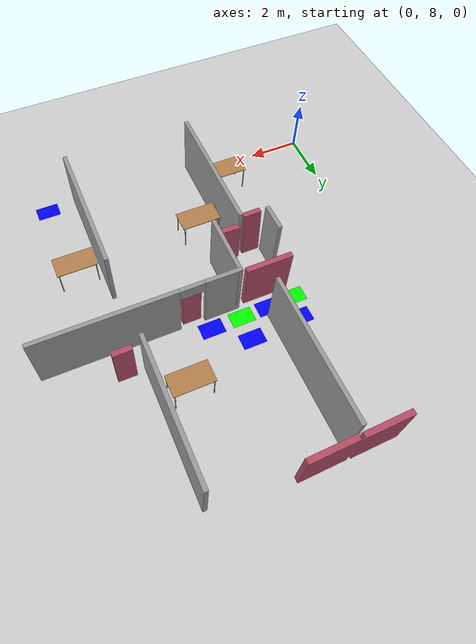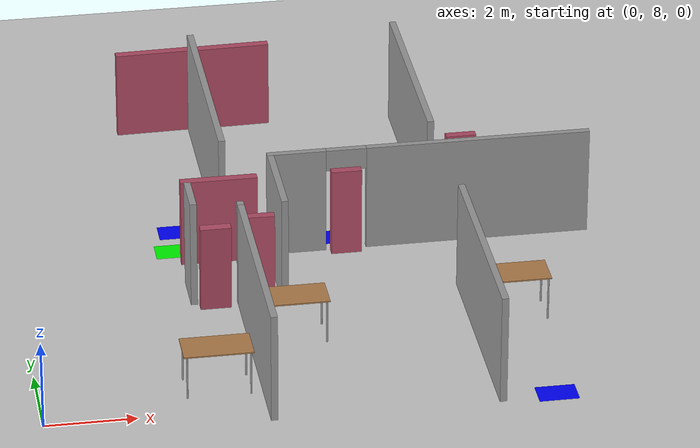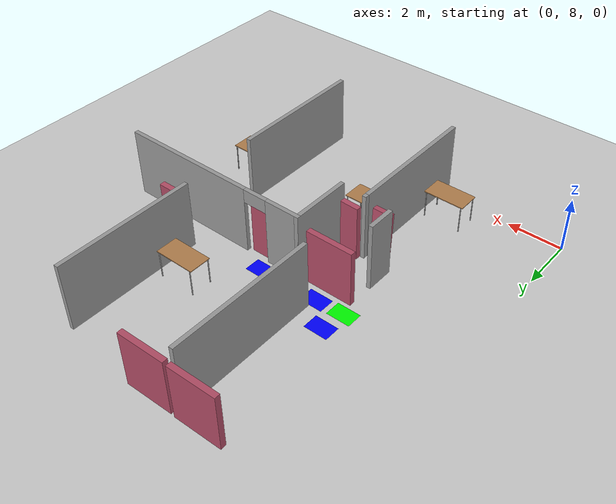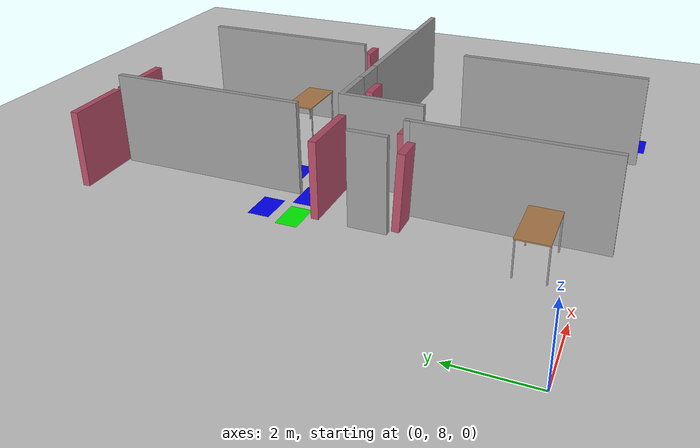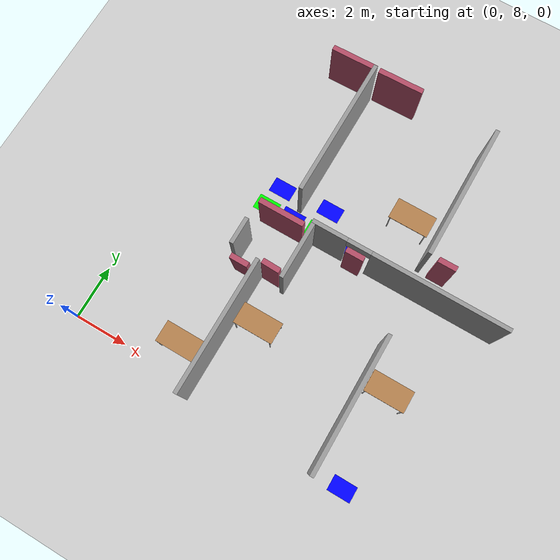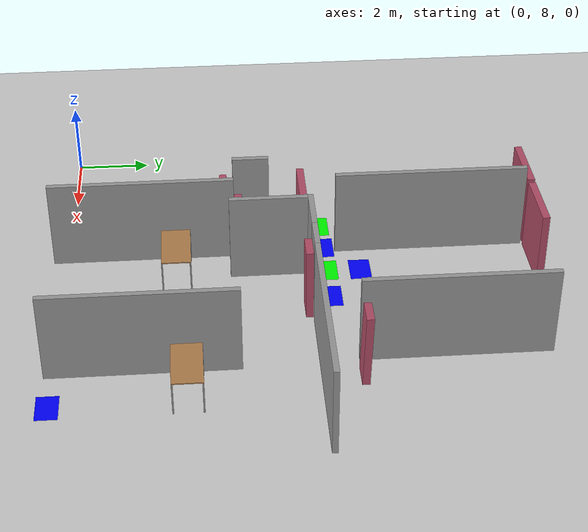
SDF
<sdf version="1.6">
 <world name="default">
  <model name="ground_plane">
   <pose>0 0 0.001 0 -0 0</pose>
   <static>1</static>
   <link name="link">
    <collision name="collision">
     <geometry><plane><normal>0 0 1</normal><size>100 100</size></plane></geometry>
     <surface><friction><ode><mu>100</mu><mu2>50</mu2></ode></friction></surface>
    </collision>
    <visual name="visual">
     <cast_shadows>0</cast_shadows>
     <geometry><plane><normal>0 0 1</normal><size>100 100</size></plane></geometry>
     <material>
      <script><uri>file://media/materials/scripts/gazebo.material</uri><name>Gazebo/Grey</name></script>
     </material>
    </visual>
   </link>
  </model>
  <model name="fin_se1f1.sdf">
   <pose>1.8125 -2.2901 0 0 -0 0</pose>
   <link name="Wall_144">
    <collision name="Wall_144_Collision">
     <geometry><box><size>2.25 0.15 2.5</size></box></geometry>
     <pose>0 0 1.25 0 -0 0</pose>
    </collision>
    <visual name="Wall_144_Visual">
     <pose>0 0 1.25 0 -0 0</pose>
     <geometry><box><size>2.25 0.15 2.5</size></box></geometry>
     <material>
      <script><uri>file://media/materials/scripts/gazebo.material</uri><name>Gazebo/Grey</name></script>
      <ambient>1 1 1 1</ambient>
     </material>
     <meta><layer>0</layer></meta>
    </visual>
    <pose>3.95745 15.7396 0 0 -0 1.5708</pose>
   </link>
   <link name="Wall_145">
    <pose>7.50746 16.7896 0.001 0 -0 0</pose>
    <visual name="Wall_145_Visual_0">
     <pose>-2.96499 0 1.25 0 -0 0</pose>
     <geometry><box><size>1.32002 0.15 2.5</size></box></geometry>
     <material>
      <script><uri>file://media/materials/scripts/gazebo.material</uri><name>Gazebo/Grey</name></script>
      <ambient>1 1 1 1</ambient>
     </material>
     <meta><layer>0</layer></meta>
    </visual>
    <collision name="Wall_145_Collision_0">
     <geometry><box><size>1.32002 0.15 2.5</size></box></geometry>
     <pose>-2.96499 0 1.25 0 -0 0</pose>
    </collision>
    <visual name="Wall_145_Visual_1">
     <pose>1.11001 0 1.25 0 -0 0</pose>
     <geometry><box><size>5.02998 0.15 2.5</size></box></geometry>
     <material>
      <script><uri>file://media/materials/scripts/gazebo.material</uri><name>Gazebo/Grey</name></script>
      <ambient>1 1 1 1</ambient>
     </material>
     <meta><layer>0</layer></meta>
    </visual>
    <collision name="Wall_145_Collision_1">
     <geometry><box><size>5.02998 0.15 2.5</size></box></geometry>
     <pose>1.11001 0 1.25 0 -0 0</pose>
    </collision>
    <visual name="Wall_145_Visual_2">
     <pose>-1.85498 0 2.25 0 -0 0</pose>
     <geometry><box><size>0.9 0.15 0.5</size></box></geometry>
     <material>
      <script><uri>file://media/materials/scripts/gazebo.material</uri><name>Gazebo/Grey</name></script>
      <ambient>1 1 1 1</ambient>
     </material>
     <meta><layer>0</layer></meta>
    </visual>
    <collision name="Wall_145_Collision_2">
     <geometry><box><size>0.9 0.15 0.5</size></box></geometry>
     <pose>-1.85498 0 2.25 0 -0 0</pose>
    </collision>
   </link>
   <link name="Wall_155">
    <collision name="Wall_155_Collision">
     <geometry><box><size>1 0.15 2.5</size></box></geometry>
     <pose>0 0 1.25 0 -0 0</pose>
    </collision>
    <visual name="Wall_155_Visual">
     <pose>0 0 1.25 0 -0 0</pose>
     <geometry><box><size>1 0.15 2.5</size></box></geometry>
     <material>
      <script><uri>file://media/materials/scripts/gazebo.material</uri><name>Gazebo/Grey</name></script>
      <ambient>1 1 1 1</ambient>
     </material>
     <meta><layer>0</layer></meta>
    </visual>
    <pose>1.97786 15.2812 0 0 0 -1.5708</pose>
   </link>
   <link name="Wall_157">
    <collision name="Wall_157_Collision">
     <geometry><box><size>0.160508 0.15 2.5</size></box></geometry>
     <pose>0 0 1.25 0 -0 0</pose>
    </collision>
    <visual name="Wall_157_Visual">
     <pose>0 0 1.25 0 -0 0</pose>
     <geometry><box><size>0.160508 0.15 2.5</size></box></geometry>
     <material>
      <script><uri>file://media/materials/scripts/gazebo.material</uri><name>Gazebo/Grey</name></script>
      <ambient>1 1 1 1</ambient>
     </material>
     <meta><layer>0</layer></meta>
    </visual>
    <pose>2.99441 14.6949 0 0 -0 1.5708</pose>
   </link>
   <link name="Wall_158">
    <collision name="Wall_158_Collision">
     <geometry><box><size>5 0.15 2.5</size></box></geometry>
     <pose>0 0 1.25 0 -0 0</pose>
    </collision>
    <visual name="Wall_158_Visual">
     <pose>0 0 1.25 0 -0 0</pose>
     <geometry><box><size>5 0.15 2.5</size></box></geometry>
     <material>
      <script><uri>file://media/materials/scripts/gazebo.material</uri><name>Gazebo/Grey</name></script>
      <ambient>1 1 1 1</ambient>
     </material>
     <meta><layer>0</layer></meta>
    </visual>
    <pose>2.99441 12.2751 0 0 0 -1.5708</pose>
   </link>
   <link name="Wall_160">
    <collision name="Wall_160_Collision">
     <geometry><box><size>5 0.15 2.5</size></box></geometry>
     <pose>0 0 1.25 0 -0 0</pose>
    </collision>
    <visual name="Wall_160_Visual">
     <pose>0 0 1.25 0 -0 0</pose>
     <geometry><box><size>5 0.15 2.5</size></box></geometry>
     <material>
      <script><uri>file://media/materials/scripts/gazebo.material</uri><name>Gazebo/Grey</name></script>
      <ambient>1 1 1 1</ambient>
     </material>
     <meta><layer>0</layer></meta>
    </visual>
    <pose>7.86314 12.2646 0 0 0 -1.5708</pose>
   </link>
   <link name="Wall_74">
    <collision name="Wall_74_Collision">
     <geometry><box><size>5 0.15 2.5</size></box></geometry>
     <pose>0 0 1.25 0 -0 0</pose>
    </collision>
    <visual name="Wall_74_Visual">
     <pose>0 0 1.25 0 -0 0</pose>
     <geometry><box><size>5 0.15 2.5</size></box></geometry>
     <material>
      <script><uri>file://media/materials/scripts/gazebo.material</uri><name>Gazebo/Grey</name></script>
      <ambient>1 1 1 1</ambient>
     </material>
     <meta><layer>0</layer></meta>
    </visual>
    <pose>7.72515 20.2325 0 0 0 -1.5708</pose>
   </link>
   <link name="Wall_76">
    <collision name="Wall_76_Collision">
     <geometry><box><size>5.25 0.15 2.5</size></box></geometry>
     <pose>0 0 1.25 0 -0 0</pose>
    </collision>
    <visual name="Wall_76_Visual">
     <pose>0 0 1.25 0 -0 0</pose>
     <geometry><box><size>5.25 0.15 2.5</size></box></geometry>
     <material>
      <script><uri>file://media/materials/scripts/gazebo.material</uri><name>Gazebo/Grey</name></script>
      <ambient>1 1 1 1</ambient>
     </material>
     <meta><layer>0</layer></meta>
    </visual>
    <pose>2.9875 20.1729 0 0 0 -1.5708</pose>
   </link>
   <static>1</static>
  </model>
  <model name="table_8">
   <static>1</static>
   <link name="link">
    <collision name="surface">
     <pose>0 0 1 0 -0 0</pose>
     <geometry><box><size>1.5 0.8 0.03</size></box></geometry>
     <surface><friction><ode><mu>0.6</mu><mu2>0.6</mu2></ode></friction></surface>
    </collision>
    <visual name="visual1">
     <pose>0 0 1 0 -0 0</pose>
     <geometry><box><size>1.5 0.8 0.03</size></box></geometry>
     <material>
      <script><uri>file://media/materials/scripts/gazebo.material</uri><name>Gazebo/Wood</name></script>
     </material>
    </visual>
    <collision name="front_left_leg">
     <pose>0.68 0.38 0.5 0 -0 0</pose>
     <geometry><cylinder><radius>0.02</radius><length>1</length></cylinder></geometry>
    </collision>
    <visual name="front_left_leg">
     <pose>0.68 0.38 0.5 0 -0 0</pose>
     <geometry><cylinder><radius>0.02</radius><length>1</length></cylinder></geometry>
     <material>
      <script><uri>file://media/materials/scripts/gazebo.material</uri><name>Gazebo/Grey</name></script>
     </material>
    </visual>
    <collision name="front_right_leg">
     <pose>0.68 -0.38 0.5 0 -0 0</pose>
     <geometry><cylinder><radius>0.02</radius><length>1</length></cylinder></geometry>
    </collision>
    <visual name="front_right_leg">
     <pose>0.68 -0.38 0.5 0 -0 0</pose>
     <geometry><cylinder><radius>0.02</radius><length>1</length></cylinder></geometry>
     <material>
      <script><uri>file://media/materials/scripts/gazebo.material</uri><name>Gazebo/Grey</name></script>
     </material>
    </visual>
    <collision name="back_right_leg">
     <pose>-0.68 -0.38 0.5 0 -0 0</pose>
     <geometry><cylinder><radius>0.02</radius><length>1</length></cylinder></geometry>
    </collision>
    <visual name="back_right_leg">
     <pose>-0.68 -0.38 0.5 0 -0 0</pose>
     <geometry><cylinder><radius>0.02</radius><length>1</length></cylinder></geometry>
     <material>
      <script><uri>file://media/materials/scripts/gazebo.material</uri><name>Gazebo/Grey</name></script>
     </material>
    </visual>
    <collision name="back_left_leg">
     <pose>-0.68 0.38 0.5 0 -0 0</pose>
     <geometry><cylinder><radius>0.02</radius><length>1</length></cylinder></geometry>
    </collision>
    <visual name="back_left_leg">
     <pose>-0.68 0.38 0.5 0 -0 0</pose>
     <geometry><cylinder><radius>0.02</radius><length>1</length></cylinder></geometry>
     <material>
      <script><uri>file://media/materials/scripts/gazebo.material</uri><name>Gazebo/Grey</name></script>
     </material>
    </visual>
   </link>
   <pose>3.80192 9.01764 0.001 0 -0 0</pose>
  </model>
  <model name="table_10">
   <static>1</static>
   <link name="link">
    <collision name="surface">
     <pose>0 0 1 0 -0 0</pose>
     <geometry><box><size>1.5 0.8 0.03</size></box></geometry>
     <surface><friction><ode><mu>0.6</mu><mu2>0.6</mu2></ode></friction></surface>
    </collision>
    <visual name="visual1">
     <pose>0 0 1 0 -0 0</pose>
     <geometry><box><size>1.5 0.8 0.03</size></box></geometry>
     <material>
      <script><uri>file://media/materials/scripts/gazebo.material</uri><name>Gazebo/Wood</name></script>
     </material>
    </visual>
    <collision name="front_left_leg">
     <pose>0.68 0.38 0.5 0 -0 0</pose>
     <geometry><cylinder><radius>0.02</radius><length>1</length></cylinder></geometry>
    </collision>
    <visual name="front_left_leg">
     <pose>0.68 0.38 0.5 0 -0 0</pose>
     <geometry><cylinder><radius>0.02</radius><length>1</length></cylinder></geometry>
     <material>
      <script><uri>file://media/materials/scripts/gazebo.material</uri><name>Gazebo/Grey</name></script>
     </material>
    </visual>
    <collision name="front_right_leg">
     <pose>0.68 -0.38 0.5 0 -0 0</pose>
     <geometry><cylinder><radius>0.02</radius><length>1</length></cylinder></geometry>
    </collision>
    <visual name="front_right_leg">
     <pose>0.68 -0.38 0.5 0 -0 0</pose>
     <geometry><cylinder><radius>0.02</radius><length>1</length></cylinder></geometry>
     <material>
      <script><uri>file://media/materials/scripts/gazebo.material</uri><name>Gazebo/Grey</name></script>
     </material>
    </visual>
    <collision name="back_right_leg">
     <pose>-0.68 -0.38 0.5 0 -0 0</pose>
     <geometry><cylinder><radius>0.02</radius><length>1</length></cylinder></geometry>
    </collision>
    <visual name="back_right_leg">
     <pose>-0.68 -0.38 0.5 0 -0 0</pose>
     <geometry><cylinder><radius>0.02</radius><length>1</length></cylinder></geometry>
     <material>
      <script><uri>file://media/materials/scripts/gazebo.material</uri><name>Gazebo/Grey</name></script>
     </material>
    </visual>
    <collision name="back_left_leg">
     <pose>-0.68 0.38 0.5 0 -0 0</pose>
     <geometry><cylinder><radius>0.02</radius><length>1</length></cylinder></geometry>
    </collision>
    <visual name="back_left_leg">
     <pose>-0.68 0.38 0.5 0 -0 0</pose>
     <geometry><cylinder><radius>0.02</radius><length>1</length></cylinder></geometry>
     <material>
      <script><uri>file://media/materials/scripts/gazebo.material</uri><name>Gazebo/Grey</name></script>
     </material>
    </visual>
   </link>
   <pose>5.72006 10.8671 0.001 0 -0 0</pose>
  </model>
  <model name="table_11">
   <static>1</static>
   <link name="link">
    <collision name="surface">
     <pose>0 0 1 0 -0 0</pose>
     <geometry><box><size>1.5 0.8 0.03</size></box></geometry>
     <surface><friction><ode><mu>0.6</mu><mu2>0.6</mu2></ode></friction></surface>
    </collision>
    <visual name="visual1">
     <pose>0 0 1 0 -0 0</pose>
     <geometry><box><size>1.5 0.8 0.03</size></box></geometry>
     <material>
      <script><uri>file://media/materials/scripts/gazebo.material</uri><name>Gazebo/Wood</name></script>
     </material>
    </visual>
    <collision name="front_left_leg">
     <pose>0.68 0.38 0.5 0 -0 0</pose>
     <geometry><cylinder><radius>0.02</radius><length>1</length></cylinder></geometry>
    </collision>
    <visual name="front_left_leg">
     <pose>0.68 0.38 0.5 0 -0 0</pose>
     <geometry><cylinder><radius>0.02</radius><length>1</length></cylinder></geometry>
     <material>
      <script><uri>file://media/materials/scripts/gazebo.material</uri><name>Gazebo/Grey</name></script>
     </material>
    </visual>
    <collision name="front_right_leg">
     <pose>0.68 -0.38 0.5 0 -0 0</pose>
     <geometry><cylinder><radius>0.02</radius><length>1</length></cylinder></geometry>
    </collision>
    <visual name="front_right_leg">
     <pose>0.68 -0.38 0.5 0 -0 0</pose>
     <geometry><cylinder><radius>0.02</radius><length>1</length></cylinder></geometry>
     <material>
      <script><uri>file://media/materials/scripts/gazebo.material</uri><name>Gazebo/Grey</name></script>
     </material>
    </visual>
    <collision name="back_right_leg">
     <pose>-0.68 -0.38 0.5 0 -0 0</pose>
     <geometry><cylinder><radius>0.02</radius><length>1</length></cylinder></geometry>
    </collision>
    <visual name="back_right_leg">
     <pose>-0.68 -0.38 0.5 0 -0 0</pose>
     <geometry><cylinder><radius>0.02</radius><length>1</length></cylinder></geometry>
     <material>
      <script><uri>file://media/materials/scripts/gazebo.material</uri><name>Gazebo/Grey</name></script>
     </material>
    </visual>
    <collision name="back_left_leg">
     <pose>-0.68 0.38 0.5 0 -0 0</pose>
     <geometry><cylinder><radius>0.02</radius><length>1</length></cylinder></geometry>
    </collision>
    <visual name="back_left_leg">
     <pose>-0.68 0.38 0.5 0 -0 0</pose>
     <geometry><cylinder><radius>0.02</radius><length>1</length></cylinder></geometry>
     <material>
      <script><uri>file://media/materials/scripts/gazebo.material</uri><name>Gazebo/Grey</name></script>
     </material>
    </visual>
   </link>
   <pose>8.47934 16.7925 0.001 0 -0 0</pose>
  </model>
  <model name="table_12">
   <static>1</static>
   <link name="link">
    <collision name="surface">
     <pose>0 0 1 0 -0 0</pose>
     <geometry><box><size>1.5 0.8 0.03</size></box></geometry>
     <surface><friction><ode><mu>0.6</mu><mu2>0.6</mu2></ode></friction></surface>
    </collision>
    <visual name="visual1">
     <pose>0 0 1 0 -0 0</pose>
     <geometry><box><size>1.5 0.8 0.03</size></box></geometry>
     <material>
      <script><uri>file://media/materials/scripts/gazebo.material</uri><name>Gazebo/Wood</name></script>
     </material>
    </visual>
    <collision name="front_left_leg">
     <pose>0.68 0.38 0.5 0 -0 0</pose>
     <geometry><cylinder><radius>0.02</radius><length>1</length></cylinder></geometry>
    </collision>
    <visual name="front_left_leg">
     <pose>0.68 0.38 0.5 0 -0 0</pose>
     <geometry><cylinder><radius>0.02</radius><length>1</length></cylinder></geometry>
     <material>
      <script><uri>file://media/materials/scripts/gazebo.material</uri><name>Gazebo/Grey</name></script>
     </material>
    </visual>
    <collision name="front_right_leg">
     <pose>0.68 -0.38 0.5 0 -0 0</pose>
     <geometry><cylinder><radius>0.02</radius><length>1</length></cylinder></geometry>
    </collision>
    <visual name="front_right_leg">
     <pose>0.68 -0.38 0.5 0 -0 0</pose>
     <geometry><cylinder><radius>0.02</radius><length>1</length></cylinder></geometry>
     <material>
      <script><uri>file://media/materials/scripts/gazebo.material</uri><name>Gazebo/Grey</name></script>
     </material>
    </visual>
    <collision name="back_right_leg">
     <pose>-0.68 -0.38 0.5 0 -0 0</pose>
     <geometry><cylinder><radius>0.02</radius><length>1</length></cylinder></geometry>
    </collision>
    <visual name="back_right_leg">
     <pose>-0.68 -0.38 0.5 0 -0 0</pose>
     <geometry><cylinder><radius>0.02</radius><length>1</length></cylinder></geometry>
     <material>
      <script><uri>file://media/materials/scripts/gazebo.material</uri><name>Gazebo/Grey</name></script>
     </material>
    </visual>
    <collision name="back_left_leg">
     <pose>-0.68 0.38 0.5 0 -0 0</pose>
     <geometry><cylinder><radius>0.02</radius><length>1</length></cylinder></geometry>
    </collision>
    <visual name="back_left_leg">
     <pose>-0.68 0.38 0.5 0 -0 0</pose>
     <geometry><cylinder><radius>0.02</radius><length>1</length></cylinder></geometry>
     <material>
      <script><uri>file://media/materials/scripts/gazebo.material</uri><name>Gazebo/Grey</name></script>
     </material>
    </visual>
   </link>
   <pose>10.6086 11.0906 0.001 0 -0 0</pose>
  </model>
  <model name="doorOutside_clone_4">
   <link name="link">
    <pose>0.155539 -0.366282 0.216958 0 -0 0</pose>
    <inertial>
     <mass>2.13199</mass>
     <inertia>
      <ixx>0.452656</ixx>
      <ixy>0</ixy>
      <ixz>0</ixz>
      <iyy>0.796738</iyy>
      <iyz>0</iyz>
      <izz>0.699414</izz>
     </inertia>
     <pose>0 0 0.001 0 -0 0</pose>
    </inertial>
    <visual name="visual">
     <geometry><box><size>1.71368 0.198843 2.05986</size></box></geometry>
     <material>
      <script><name>Gazebo/Grey</name><uri>file://media/materials/scripts/gazebo.material</uri></script>
      <ambient>0.7 0.3 0.4 1</ambient>
      <diffuse>0.7 0.7 0.7 1</diffuse>
      <specular>0.01 0.01 0.01 1</specular>
      <emissive>0 0 0 1</emissive>
      <shader type="vertex"><normal_map>__default__</normal_map></shader>
      <lighting>0</lighting>
     </material>
     <pose>0 0 0.001 0 -0 0</pose>
    </visual>
    <collision name="collision">
     <pose>0 0 0.001 0 -0 0</pose>
     <geometry><box><size>1.71368 0.198843 2.05986</size></box></geometry>
     <surface>
      <friction>
       <ode><mu>1</mu><mu2>1</mu2><fdir1>0 0 0</fdir1><slip1>0</slip1><slip2>0</slip2></ode>
       <torsional>
        <coefficient>1</coefficient>
        <patch_radius>0</patch_radius>
        <surface_radius>0</surface_radius>
        <use_patch_radius>1</use_patch_radius>
        <ode><slip>0</slip></ode>
       </torsional>
      </friction>
      <bounce><restitution_coefficient>0</restitution_coefficient><threshold>1e+06</threshold></bounce>
      <contact>
       <collide_without_contact>0</collide_without_contact>
       <collide_without_contact_bitmask>1</collide_without_contact_bitmask>
       <collide_bitmask>1</collide_bitmask>
       <ode>
        <soft_cfm>0</soft_cfm>
        <soft_erp>0.2</soft_erp>
        <kp>1e+13</kp>
        <kd>1</kd>
        <max_vel>0.01</max_vel>
        <min_depth>0</min_depth>
       </ode>
       <bullet>
        <split_impulse>1</split_impulse>
        <split_impulse_penetration_threshold>-0.01</split_impulse_penetration_threshold>
        <soft_cfm>0</soft_cfm>
        <soft_erp>0.2</soft_erp>
        <kp>1e+13</kp>
        <kd>1</kd>
       </bullet>
      </contact>
     </surface>
    </collision>
   </link>
   <static>1</static>
   <pose>3.7607 21.011 0.812972 0 -0 0.02313</pose>
  </model>
  <model name="doorOutside_clone_5">
   <link name="link">
    <pose>0.155539 -0.366282 0.216958 0 -0 0</pose>
    <inertial>
     <mass>2.13199</mass>
     <inertia>
      <ixx>0.452656</ixx>
      <ixy>0</ixy>
      <ixz>0</ixz>
      <iyy>0.796738</iyy>
      <iyz>0</iyz>
      <izz>0.699414</izz>
     </inertia>
     <pose>0 0 0.001 0 -0 0</pose>
    </inertial>
    <visual name="visual">
     <geometry><box><size>1.71368 0.198843 2.05986</size></box></geometry>
     <material>
      <script><name>Gazebo/Grey</name><uri>file://media/materials/scripts/gazebo.material</uri></script>
      <ambient>0.7 0.3 0.4 1</ambient>
      <diffuse>0.7 0.7 0.7 1</diffuse>
      <specular>0.01 0.01 0.01 1</specular>
      <emissive>0 0 0 1</emissive>
      <shader type="vertex"><normal_map>__default__</normal_map></shader>
      <lighting>0</lighting>
     </material>
     <pose>0 0 0.001 0 -0 0</pose>
    </visual>
    <collision name="collision">
     <pose>0 0 0.001 0 -0 0</pose>
     <geometry><box><size>1.71368 0.198843 2.05986</size></box></geometry>
     <surface>
      <friction>
       <ode><mu>1</mu><mu2>1</mu2><fdir1>0 0 0</fdir1><slip1>0</slip1><slip2>0</slip2></ode>
       <torsional>
        <coefficient>1</coefficient>
        <patch_radius>0</patch_radius>
        <surface_radius>0</surface_radius>
        <use_patch_radius>1</use_patch_radius>
        <ode><slip>0</slip></ode>
       </torsional>
      </friction>
      <bounce><restitution_coefficient>0</restitution_coefficient><threshold>1e+06</threshold></bounce>
      <contact>
       <collide_without_contact>0</collide_without_contact>
       <collide_without_contact_bitmask>1</collide_without_contact_bitmask>
       <collide_bitmask>1</collide_bitmask>
       <ode>
        <soft_cfm>0</soft_cfm>
        <soft_erp>0.2</soft_erp>
        <kp>1e+13</kp>
        <kd>1</kd>
        <max_vel>0.01</max_vel>
        <min_depth>0</min_depth>
       </ode>
       <bullet>
        <split_impulse>1</split_impulse>
        <split_impulse_penetration_threshold>-0.01</split_impulse_penetration_threshold>
        <soft_cfm>0</soft_cfm>
        <soft_erp>0.2</soft_erp>
        <kp>1e+13</kp>
        <kd>1</kd>
       </bullet>
      </contact>
     </surface>
    </collision>
   </link>
   <static>1</static>
   <pose>5.61517 21.0362 0.812972 0 -0 0.023079</pose>
  </model>
  <model name="intersection_14">
   <link name="link">
    <pose>0 0 0.001 0 -0 0</pose>
    <inertial>
     <mass>0.0352517</mass>
     <inertia>
      <ixx>0.000997067</ixx>
      <ixy>0</ixy>
      <ixz>0</ixz>
      <iyy>0.00220147</iyy>
      <iyz>0</iyz>
      <izz>0.0031692</izz>
     </inertia>
     <pose>0 0 0.001 0 -0 0</pose>
    </inertial>
    <visual name="visual">
     <geometry><box><size>0.862743 0.578289 1e-06</size></box></geometry>
     <material>
      <script><name>Gazebo/Grey</name><uri>file://media/materials/scripts/gazebo.material</uri></script>
      <ambient>0 0 1 1</ambient>
      <diffuse>0 0 1 1</diffuse>
      <specular>0 0 1 1</specular>
      <emissive>0 0 1 1</emissive>
      <shader type="vertex"><normal_map>__default__</normal_map></shader>
     </material>
     <pose>0 0 0.001 0 -0 0</pose>
    </visual>
    <collision name="collision">
     <pose>0 0 0.001 0 -0 0</pose>
     <geometry><box><size>0.862743 0.578289 0.000477</size></box></geometry>
     <surface>
      <friction>
       <ode><mu>1</mu><mu2>1</mu2><fdir1>0 0 0</fdir1><slip1>0</slip1><slip2>0</slip2></ode>
       <torsional>
        <coefficient>1</coefficient>
        <patch_radius>0</patch_radius>
        <surface_radius>0</surface_radius>
        <use_patch_radius>1</use_patch_radius>
        <ode><slip>0</slip></ode>
       </torsional>
      </friction>
      <bounce><restitution_coefficient>0</restitution_coefficient><threshold>1e+06</threshold></bounce>
      <contact>
       <collide_without_contact>0</collide_without_contact>
       <collide_without_contact_bitmask>1</collide_without_contact_bitmask>
       <collide_bitmask>1</collide_bitmask>
       <ode>
        <soft_cfm>0</soft_cfm>
        <soft_erp>0.2</soft_erp>
        <kp>1e+13</kp>
        <kd>1</kd>
        <max_vel>0.01</max_vel>
        <min_depth>0</min_depth>
       </ode>
       <bullet>
        <split_impulse>1</split_impulse>
        <split_impulse_penetration_threshold>-0.01</split_impulse_penetration_threshold>
        <soft_cfm>0</soft_cfm>
        <soft_erp>0.2</soft_erp>
        <kp>1e+13</kp>
        <kd>1</kd>
       </bullet>
      </contact>
     </surface>
    </collision>
   </link>
   <static>1</static>
   <pose>10.864 7.63005 0 0 -0 0</pose>
  </model>
  <model name="doorInside_4">
   <link name="link">
    <pose>0.712274 -0.220649 0.216958 0 -0 0</pose>
    <inertial>
     <mass>0.840612</mass>
     <inertia>
      <ixx>0.178476</ixx>
      <ixy>0</ixy>
      <ixz>0</ixz>
      <iyy>0.140406</iyy>
      <iyz>0</iyz>
      <izz>0.102032</izz>
     </inertia>
     <pose>0 0 0.001 0 -0 0</pose>
    </inertial>
    <visual name="visual">
     <geometry><box><size>0.675678 0.198843 2.05986</size></box></geometry>
     <material>
      <script><name>Gazebo/Grey</name><uri>file://media/materials/scripts/gazebo.material</uri></script>
      <ambient>0.7 0.3 0.4 1</ambient>
      <diffuse>0.7 0.7 0.7 1</diffuse>
      <specular>0.01 0.01 0.01 1</specular>
      <emissive>1 0 0 1</emissive>
      <shader type="vertex"><normal_map>__default__</normal_map></shader>
      <lighting>0</lighting>
     </material>
     <pose>0 0 0.001 0 -0 0</pose>
    </visual>
    <collision name="collision">
     <pose>0 0 0.001 0 -0 0</pose>
     <geometry><box><size>0.675678 0.198843 2.05986</size></box></geometry>
     <surface>
      <friction>
       <ode><mu>1</mu><mu2>1</mu2><fdir1>0 0 0</fdir1><slip1>0</slip1><slip2>0</slip2></ode>
       <torsional>
        <coefficient>1</coefficient>
        <patch_radius>0</patch_radius>
        <surface_radius>0</surface_radius>
        <use_patch_radius>1</use_patch_radius>
        <ode><slip>0</slip></ode>
       </torsional>
      </friction>
      <bounce><restitution_coefficient>0</restitution_coefficient><threshold>1e+06</threshold></bounce>
      <contact>
       <collide_without_contact>0</collide_without_contact>
       <collide_without_contact_bitmask>1</collide_without_contact_bitmask>
       <collide_bitmask>1</collide_bitmask>
       <ode>
        <soft_cfm>0</soft_cfm>
        <soft_erp>0.2</soft_erp>
        <kp>1e+13</kp>
        <kd>1</kd>
        <max_vel>0.01</max_vel>
        <min_depth>0</min_depth>
       </ode>
       <bullet>
        <split_impulse>1</split_impulse>
        <split_impulse_penetration_threshold>-0.01</split_impulse_penetration_threshold>
        <soft_cfm>0</soft_cfm>
        <soft_erp>0.2</soft_erp>
        <kp>1e+13</kp>
        <kd>1</kd>
       </bullet>
      </contact>
     </surface>
    </collision>
   </link>
   <static>0</static>
   <pose>6.73 14.5484 0.812697 0.002278 -4e-06 -0</pose>
  </model>
  <model name="doorInside_5">
   <link name="link">
    <pose>0.712274 -0.220649 0.216958 0 -0 0</pose>
    <inertial>
     <mass>0.840612</mass>
     <inertia>
      <ixx>0.178476</ixx>
      <ixy>0</ixy>
      <ixz>0</ixz>
      <iyy>0.140406</iyy>
      <iyz>0</iyz>
      <izz>0.102032</izz>
     </inertia>
     <pose>0 0 0.001 0 -0 0</pose>
    </inertial>
    <visual name="visual">
     <geometry><box><size>0.675678 0.198843 2.05986</size></box></geometry>
     <material>
      <script><name>Gazebo/Grey</name><uri>file://media/materials/scripts/gazebo.material</uri></script>
      <ambient>0.7 0.3 0.4 1</ambient>
      <diffuse>0.7 0.7 0.7 1</diffuse>
      <specular>0.01 0.01 0.01 1</specular>
      <emissive>1 0 0 1</emissive>
      <shader type="vertex"><normal_map>__default__</normal_map></shader>
      <lighting>0</lighting>
     </material>
     <pose>0 0 0.001 0 -0 0</pose>
    </visual>
    <collision name="collision">
     <pose>0 0 0.001 0 -0 0</pose>
     <geometry><box><size>0.675678 0.198843 2.05986</size></box></geometry>
     <surface>
      <friction>
       <ode><mu>1</mu><mu2>1</mu2><fdir1>0 0 0</fdir1><slip1>0</slip1><slip2>0</slip2></ode>
       <torsional>
        <coefficient>1</coefficient>
        <patch_radius>0</patch_radius>
        <surface_radius>0</surface_radius>
        <use_patch_radius>1</use_patch_radius>
        <ode><slip>0</slip></ode>
       </torsional>
      </friction>
      <bounce><restitution_coefficient>0</restitution_coefficient><threshold>1e+06</threshold></bounce>
      <contact>
       <collide_without_contact>0</collide_without_contact>
       <collide_without_contact_bitmask>1</collide_without_contact_bitmask>
       <collide_bitmask>1</collide_bitmask>
       <ode>
        <soft_cfm>0</soft_cfm>
        <soft_erp>0.2</soft_erp>
        <kp>1e+13</kp>
        <kd>1</kd>
        <max_vel>0.01</max_vel>
        <min_depth>0</min_depth>
       </ode>
       <bullet>
        <split_impulse>1</split_impulse>
        <split_impulse_penetration_threshold>-0.01</split_impulse_penetration_threshold>
        <soft_cfm>0</soft_cfm>
        <soft_erp>0.2</soft_erp>
        <kp>1e+13</kp>
        <kd>1</kd>
       </bullet>
      </contact>
     </surface>
    </collision>
   </link>
   <static>0</static>
   <pose>9.53102 15.747 0.808455 -0.026635 0 0</pose>
  </model>
  <model name="corridor_10">
   <link name="link">
    <pose>0 0 0.001 0 -0 0</pose>
    <inertial>
     <mass>0.0352517</mass>
     <inertia>
      <ixx>0.00099707</ixx>
      <ixy>0</ixy>
      <ixz>0</ixz>
      <iyy>0.00220147</iyy>
      <iyz>0</iyz>
      <izz>0.0031692</izz>
     </inertia>
     <pose>0 0 0.001 0 -0 0</pose>
    </inertial>
    <visual name="visual">
     <geometry><box><size>0.862743 0.578289 1e-06</size></box></geometry>
     <material>
      <script><name>Gazebo/Grey</name><uri>file://media/materials/scripts/gazebo.material</uri></script>
      <ambient>0 1 0 1</ambient>
      <diffuse>0 1 0 1</diffuse>
      <specular>0 1 0 1</specular>
      <emissive>0 1 0 1</emissive>
      <shader type="vertex"><normal_map>__default__</normal_map></shader>
     </material>
     <pose>0 0 0.001 0 -0 0</pose>
    </visual>
    <collision name="collision">
     <pose>0 0 0.001 0 -0 0</pose>
     <geometry><box><size>0.862743 0.578289 0.000477</size></box></geometry>
     <surface>
      <friction>
       <ode><mu>1</mu><mu2>1</mu2><fdir1>0 0 0</fdir1><slip1>0</slip1><slip2>0</slip2></ode>
       <torsional>
        <coefficient>1</coefficient>
        <patch_radius>0</patch_radius>
        <surface_radius>0</surface_radius>
        <use_patch_radius>1</use_patch_radius>
        <ode><slip>0</slip></ode>
       </torsional>
      </friction>
      <bounce><restitution_coefficient>0</restitution_coefficient><threshold>1e+06</threshold></bounce>
      <contact>
       <collide_without_contact>0</collide_without_contact>
       <collide_without_contact_bitmask>1</collide_without_contact_bitmask>
       <collide_bitmask>1</collide_bitmask>
       <ode>
        <soft_cfm>0</soft_cfm>
        <soft_erp>0.2</soft_erp>
        <kp>1e+13</kp>
        <kd>1</kd>
        <max_vel>0.01</max_vel>
        <min_depth>0</min_depth>
       </ode>
       <bullet>
        <split_impulse>1</split_impulse>
        <split_impulse_penetration_threshold>-0.01</split_impulse_penetration_threshold>
        <soft_cfm>0</soft_cfm>
        <soft_erp>0.2</soft_erp>
        <kp>1e+13</kp>
        <kd>1</kd>
       </bullet>
      </contact>
     </surface>
    </collision>
   </link>
   <static>1</static>
   <pose>5.7584 14.9615 0 0 -0 0</pose>
  </model>
  <model name="corridor_11">
   <link name="link">
    <pose>0 0 0.001 0 -0 0</pose>
    <inertial>
     <mass>0.0352517</mass>
     <inertia>
      <ixx>0.00099707</ixx>
      <ixy>0</ixy>
      <ixz>0</ixz>
      <iyy>0.00220147</iyy>
      <iyz>0</iyz>
      <izz>0.0031692</izz>
     </inertia>
     <pose>0 0 0.001 0 -0 0</pose>
    </inertial>
    <visual name="visual">
     <geometry><box><size>0.862743 0.578289 1e-06</size></box></geometry>
     <material>
      <script><name>Gazebo/Grey</name><uri>file://media/materials/scripts/gazebo.material</uri></script>
      <ambient>0 1 0 1</ambient>
      <diffuse>0 1 0 1</diffuse>
      <specular>0 1 0 1</specular>
      <emissive>0 1 0 1</emissive>
      <shader type="vertex"><normal_map>__default__</normal_map></shader>
     </material>
     <pose>0 0 0.001 0 -0 0</pose>
    </visual>
    <collision name="collision">
     <pose>0 0 0.001 0 -0 0</pose>
     <geometry><box><size>0.862743 0.578289 0.000477</size></box></geometry>
     <surface>
      <friction>
       <ode><mu>1</mu><mu2>1</mu2><fdir1>0 0 0</fdir1><slip1>0</slip1><slip2>0</slip2></ode>
       <torsional>
        <coefficient>1</coefficient>
        <patch_radius>0</patch_radius>
        <surface_radius>0</surface_radius>
        <use_patch_radius>1</use_patch_radius>
        <ode><slip>0</slip></ode>
       </torsional>
      </friction>
      <bounce><restitution_coefficient>0</restitution_coefficient><threshold>1e+06</threshold></bounce>
      <contact>
       <collide_without_contact>0</collide_without_contact>
       <collide_without_contact_bitmask>1</collide_without_contact_bitmask>
       <collide_bitmask>1</collide_bitmask>
       <ode>
        <soft_cfm>0</soft_cfm>
        <soft_erp>0.2</soft_erp>
        <kp>1e+13</kp>
        <kd>1</kd>
        <max_vel>0.01</max_vel>
        <min_depth>0</min_depth>
       </ode>
       <bullet>
        <split_impulse>1</split_impulse>
        <split_impulse_penetration_threshold>-0.01</split_impulse_penetration_threshold>
        <soft_cfm>0</soft_cfm>
        <soft_erp>0.2</soft_erp>
        <kp>1e+13</kp>
        <kd>1</kd>
       </bullet>
      </contact>
     </surface>
    </collision>
   </link>
   <static>1</static>
   <pose>3.66361 14.8882 0 0 -0 0</pose>
  </model>
  <model name="doorInside_6">
   <link name="link">
    <pose>0.712274 -0.220649 0.216958 0 -0 0</pose>
    <inertial>
     <mass>0.840612</mass>
     <inertia>
      <ixx>0.178476</ixx>
      <ixy>0</ixy>
      <ixz>0</ixz>
      <iyy>0.140406</iyy>
      <iyz>0</iyz>
      <izz>0.102032</izz>
     </inertia>
     <pose>0 0 0.001 0 -0 0</pose>
    </inertial>
    <visual name="visual">
     <geometry><box><size>0.675678 0.198843 2.05986</size></box></geometry>
     <material>
      <script><name>Gazebo/Grey</name><uri>file://media/materials/scripts/gazebo.material</uri></script>
      <ambient>0.7 0.3 0.4 1</ambient>
      <diffuse>0.7 0.7 0.7 1</diffuse>
      <specular>0.01 0.01 0.01 1</specular>
      <emissive>1 0 0 1</emissive>
      <shader type="vertex"><normal_map>__default__</normal_map></shader>
      <lighting>0</lighting>
     </material>
     <pose>0 0 0.001 0 -0 0</pose>
    </visual>
    <collision name="collision">
     <pose>0 0 0.001 0 -0 0</pose>
     <geometry><box><size>0.675678 0.198843 2.05986</size></box></geometry>
     <surface>
      <friction>
       <ode><mu>1</mu><mu2>1</mu2><fdir1>0 0 0</fdir1><slip1>0</slip1><slip2>0</slip2></ode>
       <torsional>
        <coefficient>1</coefficient>
        <patch_radius>0</patch_radius>
        <surface_radius>0</surface_radius>
        <use_patch_radius>1</use_patch_radius>
        <ode><slip>0</slip></ode>
       </torsional>
      </friction>
      <bounce><restitution_coefficient>0</restitution_coefficient><threshold>1e+06</threshold></bounce>
      <contact>
       <collide_without_contact>0</collide_without_contact>
       <collide_without_contact_bitmask>1</collide_without_contact_bitmask>
       <collide_bitmask>1</collide_bitmask>
       <ode>
        <soft_cfm>0</soft_cfm>
        <soft_erp>0.2</soft_erp>
        <kp>1e+13</kp>
        <kd>1</kd>
        <max_vel>0.01</max_vel>
        <min_depth>0</min_depth>
       </ode>
       <bullet>
        <split_impulse>1</split_impulse>
        <split_impulse_penetration_threshold>-0.01</split_impulse_penetration_threshold>
        <soft_cfm>0</soft_cfm>
        <soft_erp>0.2</soft_erp>
        <kp>1e+13</kp>
        <kd>1</kd>
       </bullet>
      </contact>
     </surface>
    </collision>
   </link>
   <static>0</static>
   <pose>3.52072 12.5189 0.830315 0.062257 2e-06 0</pose>
  </model>
  <model name="intersection_20">
   <link name="link">
    <pose>0 0 0.001 0 -0 0</pose>
    <inertial>
     <mass>0.0352517</mass>
     <inertia>
      <ixx>0.000997067</ixx>
      <ixy>0</ixy>
      <ixz>0</ixz>
      <iyy>0.00220147</iyy>
      <iyz>0</iyz>
      <izz>0.0031692</izz>
     </inertia>
     <pose>0 0 0.001 0 -0 0</pose>
    </inertial>
    <visual name="visual">
     <geometry><box><size>0.862743 0.578289 1e-06</size></box></geometry>
     <material>
      <script><name>Gazebo/Grey</name><uri>file://media/materials/scripts/gazebo.material</uri></script>
      <ambient>0 0 1 1</ambient>
      <diffuse>0 0 1 1</diffuse>
      <specular>0 0 1 1</specular>
      <emissive>0 0 1 1</emissive>
      <shader type="vertex"><normal_map>__default__</normal_map></shader>
     </material>
     <pose>0 0 0.001 0 -0 0</pose>
    </visual>
    <collision name="collision">
     <pose>0 0 0.001 0 -0 0</pose>
     <geometry><box><size>0.862743 0.578289 0.000477</size></box></geometry>
     <surface>
      <friction>
       <ode><mu>1</mu><mu2>1</mu2><fdir1>0 0 0</fdir1><slip1>0</slip1><slip2>0</slip2></ode>
       <torsional>
        <coefficient>1</coefficient>
        <patch_radius>0</patch_radius>
        <surface_radius>0</surface_radius>
        <use_patch_radius>1</use_patch_radius>
        <ode><slip>0</slip></ode>
       </torsional>
      </friction>
      <bounce><restitution_coefficient>0</restitution_coefficient><threshold>1e+06</threshold></bounce>
      <contact>
       <collide_without_contact>0</collide_without_contact>
       <collide_without_contact_bitmask>1</collide_without_contact_bitmask>
       <collide_bitmask>1</collide_bitmask>
       <ode>
        <soft_cfm>0</soft_cfm>
        <soft_erp>0.2</soft_erp>
        <kp>1e+13</kp>
        <kd>1</kd>
        <max_vel>0.01</max_vel>
        <min_depth>0</min_depth>
       </ode>
       <bullet>
        <split_impulse>1</split_impulse>
        <split_impulse_penetration_threshold>-0.01</split_impulse_penetration_threshold>
        <soft_cfm>0</soft_cfm>
        <soft_erp>0.2</soft_erp>
        <kp>1e+13</kp>
        <kd>1</kd>
       </bullet>
      </contact>
     </surface>
    </collision>
   </link>
   <static>1</static>
   <pose>5.7693 15.8726 0 0 -0 0</pose>
  </model>
  <model name="intersection_22">
   <link name="link">
    <pose>0 0 0.001 0 -0 0</pose>
    <inertial>
     <mass>0.0352517</mass>
     <inertia>
      <ixx>0.000997067</ixx>
      <ixy>0</ixy>
      <ixz>0</ixz>
      <iyy>0.00220147</iyy>
      <iyz>0</iyz>
      <izz>0.0031692</izz>
     </inertia>
     <pose>0 0 0.001 0 -0 0</pose>
    </inertial>
    <visual name="visual">
     <geometry><box><size>0.862743 0.578289 1e-06</size></box></geometry>
     <material>
      <script><name>Gazebo/Grey</name><uri>file://media/materials/scripts/gazebo.material</uri></script>
      <ambient>0 0 1 1</ambient>
      <diffuse>0 0 1 1</diffuse>
      <specular>0 0 1 1</specular>
      <emissive>0 0 1 1</emissive>
      <shader type="vertex"><normal_map>__default__</normal_map></shader>
     </material>
     <pose>0 0 0.001 0 -0 0</pose>
    </visual>
    <collision name="collision">
     <pose>0 0 0.001 0 -0 0</pose>
     <geometry><box><size>0.862743 0.578289 0.000477</size></box></geometry>
     <surface>
      <friction>
       <ode><mu>1</mu><mu2>1</mu2><fdir1>0 0 0</fdir1><slip1>0</slip1><slip2>0</slip2></ode>
       <torsional>
        <coefficient>1</coefficient>
        <patch_radius>0</patch_radius>
        <surface_radius>0</surface_radius>
        <use_patch_radius>1</use_patch_radius>
        <ode><slip>0</slip></ode>
       </torsional>
      </friction>
      <bounce><restitution_coefficient>0</restitution_coefficient><threshold>1e+06</threshold></bounce>
      <contact>
       <collide_without_contact>0</collide_without_contact>
       <collide_without_contact_bitmask>1</collide_without_contact_bitmask>
       <collide_bitmask>1</collide_bitmask>
       <ode>
        <soft_cfm>0</soft_cfm>
        <soft_erp>0.2</soft_erp>
        <kp>1e+13</kp>
        <kd>1</kd>
        <max_vel>0.01</max_vel>
        <min_depth>0</min_depth>
       </ode>
       <bullet>
        <split_impulse>1</split_impulse>
        <split_impulse_penetration_threshold>-0.01</split_impulse_penetration_threshold>
        <soft_cfm>0</soft_cfm>
        <soft_erp>0.2</soft_erp>
        <kp>1e+13</kp>
        <kd>1</kd>
       </bullet>
      </contact>
     </surface>
    </collision>
   </link>
   <static>1</static>
   <pose>3.83903 15.7337 0 0 -0 0</pose>
  </model>
  <model name="intersection_50">
   <link name="link">
    <pose>0 0 0.001 0 -0 0</pose>
    <inertial>
     <mass>0.0352517</mass>
     <inertia>
      <ixx>0.000997067</ixx>
      <ixy>0</ixy>
      <ixz>0</ixz>
      <iyy>0.00220147</iyy>
      <iyz>0</iyz>
      <izz>0.0031692</izz>
     </inertia>
     <pose>0 0 0.001 0 -0 0</pose>
    </inertial>
    <visual name="visual">
     <geometry><box><size>0.862743 0.578289 1e-06</size></box></geometry>
     <material>
      <script><name>Gazebo/Grey</name><uri>file://media/materials/scripts/gazebo.material</uri></script>
      <ambient>0 0 1 1</ambient>
      <diffuse>0 0 1 1</diffuse>
      <specular>0 0 1 1</specular>
      <emissive>0 0 1 1</emissive>
      <shader type="vertex"><normal_map>__default__</normal_map></shader>
     </material>
     <pose>0 0 0.001 0 -0 0</pose>
    </visual>
    <collision name="collision">
     <pose>0 0 0.001 0 -0 0</pose>
     <geometry><box><size>0.862743 0.578289 0.000477</size></box></geometry>
     <surface>
      <friction>
       <ode><mu>1</mu><mu2>1</mu2><fdir1>0 0 0</fdir1><slip1>0</slip1><slip2>0</slip2></ode>
       <torsional>
        <coefficient>1</coefficient>
        <patch_radius>0</patch_radius>
        <surface_radius>0</surface_radius>
        <use_patch_radius>1</use_patch_radius>
        <ode><slip>0</slip></ode>
       </torsional>
      </friction>
      <bounce><restitution_coefficient>0</restitution_coefficient><threshold>1e+06</threshold></bounce>
      <contact>
       <collide_without_contact>0</collide_without_contact>
       <collide_without_contact_bitmask>1</collide_without_contact_bitmask>
       <collide_bitmask>1</collide_bitmask>
       <ode>
        <soft_cfm>0</soft_cfm>
        <soft_erp>0.2</soft_erp>
        <kp>1e+13</kp>
        <kd>1</kd>
        <max_vel>0.01</max_vel>
        <min_depth>0</min_depth>
       </ode>
       <bullet>
        <split_impulse>1</split_impulse>
        <split_impulse_penetration_threshold>-0.01</split_impulse_penetration_threshold>
        <soft_cfm>0</soft_cfm>
        <soft_erp>0.2</soft_erp>
        <kp>1e+13</kp>
        <kd>1</kd>
       </bullet>
      </contact>
     </surface>
    </collision>
   </link>
   <static>1</static>
   <pose>6.91736 14.9769 0 0 -0 0</pose>
  </model>
  <model name="intersection_51">
   <link name="link">
    <pose>0 0 0.001 0 -0 0</pose>
    <inertial>
     <mass>0.0352517</mass>
     <inertia>
      <ixx>0.000997067</ixx>
      <ixy>0</ixy>
      <ixz>0</ixz>
      <iyy>0.00220147</iyy>
      <iyz>0</iyz>
      <izz>0.0031692</izz>
     </inertia>
     <pose>0 0 0.001 0 -0 0</pose>
    </inertial>
    <visual name="visual">
     <geometry><box><size>0.862743 0.578289 1e-06</size></box></geometry>
     <material>
      <script><name>Gazebo/Grey</name><uri>file://media/materials/scripts/gazebo.material</uri></script>
      <ambient>0 0 1 1</ambient>
      <diffuse>0 0 1 1</diffuse>
      <specular>0 0 1 1</specular>
      <emissive>0 0 1 1</emissive>
      <shader type="vertex"><normal_map>__default__</normal_map></shader>
     </material>
     <pose>0 0 0.001 0 -0 0</pose>
    </visual>
    <collision name="collision">
     <pose>0 0 0.001 0 -0 0</pose>
     <geometry><box><size>0.862743 0.578289 0.000477</size></box></geometry>
     <surface>
      <friction>
       <ode><mu>1</mu><mu2>1</mu2><fdir1>0 0 0</fdir1><slip1>0</slip1><slip2>0</slip2></ode>
       <torsional>
        <coefficient>1</coefficient>
        <patch_radius>0</patch_radius>
        <surface_radius>0</surface_radius>
        <use_patch_radius>1</use_patch_radius>
        <ode><slip>0</slip></ode>
       </torsional>
      </friction>
      <bounce><restitution_coefficient>0</restitution_coefficient><threshold>1e+06</threshold></bounce>
      <contact>
       <collide_without_contact>0</collide_without_contact>
       <collide_without_contact_bitmask>1</collide_without_contact_bitmask>
       <collide_bitmask>1</collide_bitmask>
       <ode>
        <soft_cfm>0</soft_cfm>
        <soft_erp>0.2</soft_erp>
        <kp>1e+13</kp>
        <kd>1</kd>
        <max_vel>0.01</max_vel>
        <min_depth>0</min_depth>
       </ode>
       <bullet>
        <split_impulse>1</split_impulse>
        <split_impulse_penetration_threshold>-0.01</split_impulse_penetration_threshold>
        <soft_cfm>0</soft_cfm>
        <soft_erp>0.2</soft_erp>
        <kp>1e+13</kp>
        <kd>1</kd>
       </bullet>
      </contact>
     </surface>
    </collision>
   </link>
   <static>1</static>
   <pose>4.70027 14.9403 0 0 -0 0</pose>
  </model>
  <model name="doorOutside_4">
   <link name="link">
    <pose>0.155539 -0.366282 0.216958 0 -0 0</pose>
    <inertial>
     <mass>2.13199</mass>
     <inertia>
      <ixx>0.452656</ixx>
      <ixy>0</ixy>
      <ixz>0</ixz>
      <iyy>0.796738</iyy>
      <iyz>0</iyz>
      <izz>0.699414</izz>
     </inertia>
    </inertial>
    <visual name="visual">
     <geometry><box><size>1.71368 0.198843 2.05986</size></box></geometry>
     <material>
      <script><name>Gazebo/Grey</name><uri>file://media/materials/scripts/gazebo.material</uri></script>
      <ambient>0.7 0.3 0.4 1</ambient>
      <diffuse>0.7 0.7 0.7 1</diffuse>
      <specular>0.01 0.01 0.01 1</specular>
      <emissive>0 0 0 1</emissive>
      <shader type="vertex"><normal_map>__default__</normal_map></shader>
      <lighting>0</lighting>
     </material>
    </visual>
    <collision name="collision">
     <geometry><box><size>1.71368 0.198843 2.05986</size></box></geometry>
     <surface>
      <friction>
       <ode><mu>1</mu><mu2>1</mu2><fdir1>0 0 0</fdir1><slip1>0</slip1><slip2>0</slip2></ode>
       <torsional>
        <coefficient>1</coefficient>
        <patch_radius>0</patch_radius>
        <surface_radius>0</surface_radius>
        <use_patch_radius>1</use_patch_radius>
        <ode><slip>0</slip></ode>
       </torsional>
      </friction>
      <bounce><restitution_coefficient>0</restitution_coefficient><threshold>1e+06</threshold></bounce>
      <contact>
       <collide_without_contact>0</collide_without_contact>
       <collide_without_contact_bitmask>1</collide_without_contact_bitmask>
       <collide_bitmask>1</collide_bitmask>
       <ode>
        <soft_cfm>0</soft_cfm>
        <soft_erp>0.2</soft_erp>
        <kp>1e+13</kp>
        <kd>1</kd>
        <max_vel>0.01</max_vel>
        <min_depth>0</min_depth>
       </ode>
       <bullet>
        <split_impulse>1</split_impulse>
        <split_impulse_penetration_threshold>-0.01</split_impulse_penetration_threshold>
        <soft_cfm>0</soft_cfm>
        <soft_erp>0.2</soft_erp>
        <kp>1e+13</kp>
        <kd>1</kd>
       </bullet>
      </contact>
     </surface>
    </collision>
   </link>
   <static>0</static>
   <pose>4.44277 14.7304 0.812968 -1e-06 5e-06 -1.1e-05</pose>
  </model>
  <model name="doorInside_18">
   <link name="link">
    <pose>0.712274 -0.220649 0.216958 0 -0 0</pose>
    <inertial>
     <mass>0.840612</mass>
     <inertia>
      <ixx>0.178476</ixx>
      <ixy>0</ixy>
      <ixz>0</ixz>
      <iyy>0.140406</iyy>
      <iyz>0</iyz>
      <izz>0.102032</izz>
     </inertia>
    </inertial>
    <visual name="visual">
     <geometry><box><size>0.675678 0.198843 2.05986</size></box></geometry>
     <material>
      <script><name>Gazebo/Grey</name><uri>file://media/materials/scripts/gazebo.material</uri></script>
      <ambient>0.7 0.3 0.4 1</ambient>
      <diffuse>0.7 0.7 0.7 1</diffuse>
      <specular>0.01 0.01 0.01 1</specular>
      <emissive>1 0 0 1</emissive>
      <shader type="vertex"><normal_map>__default__</normal_map></shader>
      <lighting>0</lighting>
     </material>
    </visual>
    <collision name="collision">
     <geometry><box><size>0.675678 0.198843 2.05986</size></box></geometry>
     <surface>
      <friction>
       <ode><mu>1</mu><mu2>1</mu2><fdir1>0 0 0</fdir1><slip1>0</slip1><slip2>0</slip2></ode>
       <torsional>
        <coefficient>1</coefficient>
        <patch_radius>0</patch_radius>
        <surface_radius>0</surface_radius>
        <use_patch_radius>1</use_patch_radius>
        <ode><slip>0</slip></ode>
       </torsional>
      </friction>
      <bounce><restitution_coefficient>0</restitution_coefficient><threshold>1e+06</threshold></bounce>
      <contact>
       <collide_without_contact>0</collide_without_contact>
       <collide_without_contact_bitmask>1</collide_without_contact_bitmask>
       <collide_bitmask>1</collide_bitmask>
       <ode>
        <soft_cfm>0</soft_cfm>
        <soft_erp>0.2</soft_erp>
        <kp>1e+13</kp>
        <kd>1</kd>
        <max_vel>0.01</max_vel>
        <min_depth>0</min_depth>
       </ode>
       <bullet>
        <split_impulse>1</split_impulse>
        <split_impulse_penetration_threshold>-0.01</split_impulse_penetration_threshold>
        <soft_cfm>0</soft_cfm>
        <soft_erp>0.2</soft_erp>
        <kp>1e+13</kp>
        <kd>1</kd>
       </bullet>
      </contact>
     </surface>
    </collision>
   </link>
   <static>0</static>
   <pose>4.53113 12.8178 0.811747 -0.009787 -0 -0.033347</pose>
  </model>
 </world>
</sdf>
